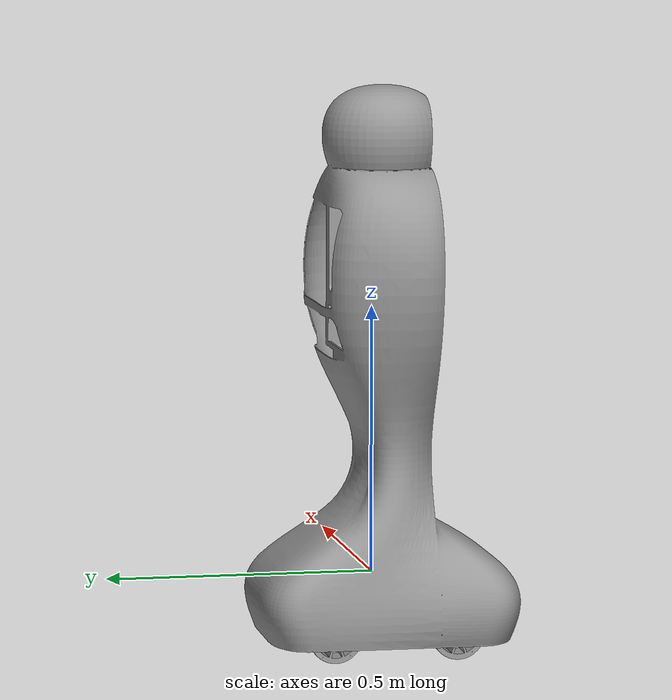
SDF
<?xml version='1.0'?>
<sdf version='1.6'>
  <model name='model'>
    <link name='link_0'>
      <inertial>
        <mass>1</mass>
        <inertia>
          <ixx>0.166667</ixx>
          <ixy>0</ixy>
          <ixz>0</ixz>
          <iyy>0.166667</iyy>
          <iyz>0</iyz>
          <izz>0.166667</izz>
        </inertia>
        <pose frame=''>0 0 0 0 -0 0</pose>
      </inertial>
      <pose frame=''>-3.6e-05 -0.019281 -0.091956 0 -0 0</pose>
      <gravity>1</gravity>
      <self_collide>0</self_collide>
      <kinematic>0</kinematic>
      <enable_wind>0</enable_wind>
      <visual name='visual'>
        <pose frame=''>0 0 0 0 -0 0</pose>
        <geometry>
          <mesh>
            <uri>/home/pratik/review2/src/demo_car/meshes/base_full.stl</uri>
            <scale>1 1 1</scale>
          </mesh>
        </geometry>
        <material>
          <lighting>1</lighting>
          <script>
            <uri>file://media/materials/scripts/gazebo.material</uri>
            <name>Gazebo/Grey</name>
          </script>
          <shader type='vertex'>
            <normal_map>__default__</normal_map>
          </shader>
          <ambient>0.3 0.3 0.3 1</ambient>
          <diffuse>0.7 0.7 0.7 1</diffuse>
          <specular>0.01 0.01 0.01 1</specular>
          <emissive>0 0 0 1</emissive>
        </material>
        <transparency>0</transparency>
        <cast_shadows>1</cast_shadows>
      </visual>
      <collision name='collision'>
        <laser_retro>0</laser_retro>
        <max_contacts>10</max_contacts>
        <pose frame=''>0 0 0 0 -0 0</pose>
        <geometry>
          <mesh>
            <uri>/home/pratik/review2/src/demo_car/meshes/base_full.stl</uri>
            <scale>1 1 1</scale>
          </mesh>
        </geometry>
        <surface>
          <friction>
            <ode>
              <mu>1</mu>
              <mu2>1</mu2>
              <fdir1>0 0 0</fdir1>
              <slip1>0</slip1>
              <slip2>0</slip2>
            </ode>
            <torsional>
              <coefficient>1</coefficient>
              <patch_radius>0</patch_radius>
              <surface_radius>0</surface_radius>
              <use_patch_radius>1</use_patch_radius>
              <ode>
                <slip>0</slip>
              </ode>
            </torsional>
          </friction>
          <bounce>
            <restitution_coefficient>0</restitution_coefficient>
            <threshold>1e+06</threshold>
          </bounce>
          <contact>
            <collide_without_contact>0</collide_without_contact>
            <collide_without_contact_bitmask>1</collide_without_contact_bitmask>
            <collide_bitmask>1</collide_bitmask>
            <ode>
              <soft_cfm>0</soft_cfm>
              <soft_erp>0.2</soft_erp>
              <kp>1e+13</kp>
              <kd>1</kd>
              <max_vel>0.01</max_vel>
              <min_depth>0</min_depth>
            </ode>
            <bullet>
              <split_impulse>1</split_impulse>
              <split_impulse_penetration_threshold>-0.01</split_impulse_penetration_threshold>
              <soft_cfm>0</soft_cfm>
              <soft_erp>0.2</soft_erp>
              <kp>1e+13</kp>
              <kd>1</kd>
            </bullet>
          </contact>
        </surface>
      </collision>
    </link>
    <link name='link_1'>
      <inertial>
        <mass>1</mass>
        <inertia>
          <ixx>0.166667</ixx>
          <ixy>0</ixy>
          <ixz>0</ixz>
          <iyy>0.166667</iyy>
          <iyz>0</iyz>
          <izz>0.166667</izz>
        </inertia>
        <pose frame=''>0 0 0 0 -0 0</pose>
      </inertial>
      <pose frame=''>-3.6e-05 -0.019281 -0.091956 0 -0 0</pose>
      <gravity>1</gravity>
      <self_collide>0</self_collide>
      <kinematic>0</kinematic>
      <enable_wind>0</enable_wind>
      <visual name='visual'>
        <pose frame=''>0 0 0 0 -0 0</pose>
        <geometry>
          <mesh>
            <uri>/home/pratik/review2/src/demo_car/meshes/wheel_fr.stl</uri>
            <scale>1 1 1</scale>
          </mesh>
        </geometry>
        <material>
          <lighting>1</lighting>
          <script>
            <uri>file://media/materials/scripts/gazebo.material</uri>
            <name>Gazebo/Grey</name>
          </script>
          <shader type='vertex'>
            <normal_map>__default__</normal_map>
          </shader>
          <ambient>0.3 0.3 0.3 1</ambient>
          <diffuse>0.7 0.7 0.7 1</diffuse>
          <specular>0.01 0.01 0.01 1</specular>
          <emissive>0 0 0 1</emissive>
        </material>
        <transparency>0</transparency>
        <cast_shadows>1</cast_shadows>
      </visual>
      <collision name='collision'>
        <laser_retro>0</laser_retro>
        <max_contacts>10</max_contacts>
        <pose frame=''>0 0 0 0 -0 0</pose>
        <geometry>
          <mesh>
            <uri>/home/pratik/review2/src/demo_car/meshes/wheel_fr.stl</uri>
            <scale>1 1 1</scale>
          </mesh>
        </geometry>
        <surface>
          <friction>
            <ode>
              <mu>1</mu>
              <mu2>1</mu2>
              <fdir1>0 0 0</fdir1>
              <slip1>0</slip1>
              <slip2>0</slip2>
            </ode>
            <torsional>
              <coefficient>1</coefficient>
              <patch_radius>0</patch_radius>
              <surface_radius>0</surface_radius>
              <use_patch_radius>1</use_patch_radius>
              <ode>
                <slip>0</slip>
              </ode>
            </torsional>
          </friction>
          <bounce>
            <restitution_coefficient>0</restitution_coefficient>
            <threshold>1e+06</threshold>
          </bounce>
          <contact>
            <collide_without_contact>0</collide_without_contact>
            <collide_without_contact_bitmask>1</collide_without_contact_bitmask>
            <collide_bitmask>1</collide_bitmask>
            <ode>
              <soft_cfm>0</soft_cfm>
              <soft_erp>0.2</soft_erp>
              <kp>1e+13</kp>
              <kd>1</kd>
              <max_vel>0.01</max_vel>
              <min_depth>0</min_depth>
            </ode>
            <bullet>
              <split_impulse>1</split_impulse>
              <split_impulse_penetration_threshold>-0.01</split_impulse_penetration_threshold>
              <soft_cfm>0</soft_cfm>
              <soft_erp>0.2</soft_erp>
              <kp>1e+13</kp>
              <kd>1</kd>
            </bullet>
          </contact>
        </surface>
      </collision>
    </link>
    <link name='link_2'>
      <inertial>
        <mass>1</mass>
        <inertia>
          <ixx>0.166667</ixx>
          <ixy>0</ixy>
          <ixz>0</ixz>
          <iyy>0.166667</iyy>
          <iyz>0</iyz>
          <izz>0.166667</izz>
        </inertia>
        <pose frame=''>0 0 0 0 -0 0</pose>
      </inertial>
      <pose frame=''>-3.6e-05 -0.019281 -0.091956 3.14159 0.001593 3.14159</pose>
      <gravity>1</gravity>
      <self_collide>0</self_collide>
      <kinematic>0</kinematic>
      <enable_wind>0</enable_wind>
      <visual name='visual'>
        <pose frame=''>0 0 0 0 -0 0</pose>
        <geometry>
          <mesh>
            <uri>/home/pratik/review2/src/demo_car/meshes/wheel_fr.stl</uri>
            <scale>1 1 1</scale>
          </mesh>
        </geometry>
        <material>
          <lighting>1</lighting>
          <script>
            <uri>file://media/materials/scripts/gazebo.material</uri>
            <name>Gazebo/Grey</name>
          </script>
          <shader type='vertex'>
            <normal_map>__default__</normal_map>
          </shader>
          <ambient>0.3 0.3 0.3 1</ambient>
          <diffuse>0.7 0.7 0.7 1</diffuse>
          <specular>0.01 0.01 0.01 1</specular>
          <emissive>0 0 0 1</emissive>
        </material>
        <transparency>0</transparency>
        <cast_shadows>1</cast_shadows>
      </visual>
      <collision name='collision'>
        <laser_retro>0</laser_retro>
        <max_contacts>10</max_contacts>
        <pose frame=''>0 0 0 0 -0 0</pose>
        <geometry>
          <mesh>
            <uri>/home/pratik/review2/src/demo_car/meshes/wheel_fr.stl</uri>
            <scale>1 1 1</scale>
          </mesh>
        </geometry>
        <surface>
          <friction>
            <ode>
              <mu>1</mu>
              <mu2>1</mu2>
              <fdir1>0 0 0</fdir1>
              <slip1>0</slip1>
              <slip2>0</slip2>
            </ode>
            <torsional>
              <coefficient>1</coefficient>
              <patch_radius>0</patch_radius>
              <surface_radius>0</surface_radius>
              <use_patch_radius>1</use_patch_radius>
              <ode>
                <slip>0</slip>
              </ode>
            </torsional>
          </friction>
          <bounce>
            <restitution_coefficient>0</restitution_coefficient>
            <threshold>1e+06</threshold>
          </bounce>
          <contact>
            <collide_without_contact>0</collide_without_contact>
            <collide_without_contact_bitmask>1</collide_without_contact_bitmask>
            <collide_bitmask>1</collide_bitmask>
            <ode>
              <soft_cfm>0</soft_cfm>
              <soft_erp>0.2</soft_erp>
              <kp>1e+13</kp>
              <kd>1</kd>
              <max_vel>0.01</max_vel>
              <min_depth>0</min_depth>
            </ode>
            <bullet>
              <split_impulse>1</split_impulse>
              <split_impulse_penetration_threshold>-0.01</split_impulse_penetration_threshold>
              <soft_cfm>0</soft_cfm>
              <soft_erp>0.2</soft_erp>
              <kp>1e+13</kp>
              <kd>1</kd>
            </bullet>
          </contact>
        </surface>
      </collision>
    </link>
    <link name='link_3'>
      <inertial>
        <mass>1</mass>
        <inertia>
          <ixx>0.166667</ixx>
          <ixy>0</ixy>
          <ixz>0</ixz>
          <iyy>0.166667</iyy>
          <iyz>0</iyz>
          <izz>0.166667</izz>
        </inertia>
        <pose frame=''>0 0 0 0 -0 0</pose>
      </inertial>
      <pose frame=''>-3.6e-05 -0.019281 -0.091956 3.14 -0 0</pose>
      <gravity>1</gravity>
      <self_collide>0</self_collide>
      <kinematic>0</kinematic>
      <enable_wind>0</enable_wind>
      <visual name='visual'>
        <pose frame=''>0 0 0 0 -0 0</pose>
        <geometry>
          <mesh>
            <uri>/home/pratik/review2/src/demo_car/meshes/wheel_fr.stl</uri>
            <scale>1 1 1</scale>
          </mesh>
        </geometry>
        <material>
          <lighting>1</lighting>
          <script>
            <uri>file://media/materials/scripts/gazebo.material</uri>
            <name>Gazebo/Grey</name>
          </script>
          <shader type='vertex'>
            <normal_map>__default__</normal_map>
          </shader>
          <ambient>0.3 0.3 0.3 1</ambient>
          <diffuse>0.7 0.7 0.7 1</diffuse>
          <specular>0.01 0.01 0.01 1</specular>
          <emissive>0 0 0 1</emissive>
        </material>
        <transparency>0</transparency>
        <cast_shadows>1</cast_shadows>
      </visual>
      <collision name='collision'>
        <laser_retro>0</laser_retro>
        <max_contacts>10</max_contacts>
        <pose frame=''>0 0 0 0 -0 0</pose>
        <geometry>
          <mesh>
            <uri>/home/pratik/review2/src/demo_car/meshes/wheel_fr.stl</uri>
            <scale>1 1 1</scale>
          </mesh>
        </geometry>
        <surface>
          <friction>
            <ode>
              <mu>1</mu>
              <mu2>1</mu2>
              <fdir1>0 0 0</fdir1>
              <slip1>0</slip1>
              <slip2>0</slip2>
            </ode>
            <torsional>
              <coefficient>1</coefficient>
              <patch_radius>0</patch_radius>
              <surface_radius>0</surface_radius>
              <use_patch_radius>1</use_patch_radius>
              <ode>
                <slip>0</slip>
              </ode>
            </torsional>
          </friction>
          <bounce>
            <restitution_coefficient>0</restitution_coefficient>
            <threshold>1e+06</threshold>
          </bounce>
          <contact>
            <collide_without_contact>0</collide_without_contact>
            <collide_without_contact_bitmask>1</collide_without_contact_bitmask>
            <collide_bitmask>1</collide_bitmask>
            <ode>
              <soft_cfm>0</soft_cfm>
              <soft_erp>0.2</soft_erp>
              <kp>1e+13</kp>
              <kd>1</kd>
              <max_vel>0.01</max_vel>
              <min_depth>0</min_depth>
            </ode>
            <bullet>
              <split_impulse>1</split_impulse>
              <split_impulse_penetration_threshold>-0.01</split_impulse_penetration_threshold>
              <soft_cfm>0</soft_cfm>
              <soft_erp>0.2</soft_erp>
              <kp>1e+13</kp>
              <kd>1</kd>
            </bullet>
          </contact>
        </surface>
      </collision>
    </link>
    <link name='link_4'>
      <inertial>
        <mass>1</mass>
        <inertia>
          <ixx>0.166667</ixx>
          <ixy>0</ixy>
          <ixz>0</ixz>
          <iyy>0.166667</iyy>
          <iyz>0</iyz>
          <izz>0.166667</izz>
        </inertia>
        <pose frame=''>0 0 0 0 -0 0</pose>
      </inertial>
      <pose frame=''>-3.6e-05 -0.019281 -0.091956 -0.001593 0.001593 3.14159</pose>
      <gravity>1</gravity>
      <self_collide>0</self_collide>
      <kinematic>0</kinematic>
      <enable_wind>0</enable_wind>
      <visual name='visual'>
        <pose frame=''>0 0 0 0 -0 0</pose>
        <geometry>
          <mesh>
            <uri>/home/pratik/review2/src/demo_car/meshes/wheel_fr.stl</uri>
            <scale>1 1 1</scale>
          </mesh>
        </geometry>
        <material>
          <lighting>1</lighting>
          <script>
            <uri>file://media/materials/scripts/gazebo.material</uri>
            <name>Gazebo/Grey</name>
          </script>
          <shader type='vertex'>
            <normal_map>__default__</normal_map>
          </shader>
          <ambient>0.3 0.3 0.3 1</ambient>
          <diffuse>0.7 0.7 0.7 1</diffuse>
          <specular>0.01 0.01 0.01 1</specular>
          <emissive>0 0 0 1</emissive>
        </material>
        <transparency>0</transparency>
        <cast_shadows>1</cast_shadows>
      </visual>
      <collision name='collision'>
        <laser_retro>0</laser_retro>
        <max_contacts>10</max_contacts>
        <pose frame=''>0 0 0 0 -0 0</pose>
        <geometry>
          <mesh>
            <uri>/home/pratik/review2/src/demo_car/meshes/wheel_fr.stl</uri>
            <scale>1 1 1</scale>
          </mesh>
        </geometry>
        <surface>
          <friction>
            <ode>
              <mu>1</mu>
              <mu2>1</mu2>
              <fdir1>0 0 0</fdir1>
              <slip1>0</slip1>
              <slip2>0</slip2>
            </ode>
            <torsional>
              <coefficient>1</coefficient>
              <patch_radius>0</patch_radius>
              <surface_radius>0</surface_radius>
              <use_patch_radius>1</use_patch_radius>
              <ode>
                <slip>0</slip>
              </ode>
            </torsional>
          </friction>
          <bounce>
            <restitution_coefficient>0</restitution_coefficient>
            <threshold>1e+06</threshold>
          </bounce>
          <contact>
            <collide_without_contact>0</collide_without_contact>
            <collide_without_contact_bitmask>1</collide_without_contact_bitmask>
            <collide_bitmask>1</collide_bitmask>
            <ode>
              <soft_cfm>0</soft_cfm>
              <soft_erp>0.2</soft_erp>
              <kp>1e+13</kp>
              <kd>1</kd>
              <max_vel>0.01</max_vel>
              <min_depth>0</min_depth>
            </ode>
            <bullet>
              <split_impulse>1</split_impulse>
              <split_impulse_penetration_threshold>-0.01</split_impulse_penetration_threshold>
              <soft_cfm>0</soft_cfm>
              <soft_erp>0.2</soft_erp>
              <kp>1e+13</kp>
              <kd>1</kd>
            </bullet>
          </contact>
        </surface>
      </collision>
    </link>
    <joint name='link_0_JOINT_0' type='revolute'>
      <parent>link_0</parent>
      <child>link_1</child>
      <pose frame=''>0 0.115 0 0 -0 0</pose>
      <axis>
        <xyz>1 0 0</xyz>
        <use_parent_model_frame>0</use_parent_model_frame>
        <limit>
          <lower>-1.79769e+308</lower>
          <upper>1.79769e+308</upper>
          <effort>-1</effort>
          <velocity>-1</velocity>
        </limit>
        <dynamics>
          <spring_reference>0</spring_reference>
          <spring_stiffness>0</spring_stiffness>
          <damping>0</damping>
        </dynamics>
      </axis>
      <physics>
        <ode>
          <limit>
            <cfm>0</cfm>
            <erp>0.2</erp>
          </limit>
          <suspension>
            <cfm>0</cfm>
            <erp>0.2</erp>
          </suspension>
        </ode>
      </physics>
    </joint>
    <joint name='link_0_JOINT_1' type='revolute'>
      <parent>link_0</parent>
      <child>link_2</child>
      <pose frame=''>0 0.115 0 0 -0 0</pose>
      <axis>
        <xyz>1 0 0</xyz>
        <use_parent_model_frame>0</use_parent_model_frame>
        <limit>
          <lower>-1.79769e+308</lower>
          <upper>1.79769e+308</upper>
          <effort>-1</effort>
          <velocity>-1</velocity>
        </limit>
        <dynamics>
          <spring_reference>0</spring_reference>
          <spring_stiffness>0</spring_stiffness>
          <damping>0</damping>
        </dynamics>
      </axis>
      <physics>
        <ode>
          <limit>
            <cfm>0</cfm>
            <erp>0.2</erp>
          </limit>
          <suspension>
            <cfm>0</cfm>
            <erp>0.2</erp>
          </suspension>
        </ode>
      </physics>
    </joint>
    <joint name='link_0_JOINT_2' type='revolute'>
      <parent>link_0</parent>
      <child>link_3</child>
      <pose frame=''>0 0.115 0 0 -0 0</pose>
      <axis>
        <xyz>1 0 0</xyz>
        <use_parent_model_frame>0</use_parent_model_frame>
        <limit>
          <lower>-1.79769e+308</lower>
          <upper>1.79769e+308</upper>
          <effort>-1</effort>
          <velocity>-1</velocity>
        </limit>
        <dynamics>
          <spring_reference>0</spring_reference>
          <spring_stiffness>0</spring_stiffness>
          <damping>0</damping>
        </dynamics>
      </axis>
      <physics>
        <ode>
          <limit>
            <cfm>0</cfm>
            <erp>0.2</erp>
          </limit>
          <suspension>
            <cfm>0</cfm>
            <erp>0.2</erp>
          </suspension>
        </ode>
      </physics>
    </joint>
    <joint name='link_0_JOINT_3' type='revolute'>
      <parent>link_0</parent>
      <child>link_4</child>
      <pose frame=''>0 0.115 0 0 -0 0</pose>
      <axis>
        <xyz>1 0 0</xyz>
        <use_parent_model_frame>0</use_parent_model_frame>
        <limit>
          <lower>-1.79769e+308</lower>
          <upper>1.79769e+308</upper>
          <effort>-1</effort>
          <velocity>-1</velocity>
        </limit>
        <dynamics>
          <spring_reference>0</spring_reference>
          <spring_stiffness>0</spring_stiffness>
          <damping>0</damping>
        </dynamics>
      </axis>
      <physics>
        <ode>
          <limit>
            <cfm>0</cfm>
            <erp>0.2</erp>
          </limit>
          <suspension>
            <cfm>0</cfm>
            <erp>0.2</erp>
          </suspension>
        </ode>
      </physics>
    </joint>
  </model>

  <plugin name="skid_steer_drive_controller" filename="libgazebo_ros_skid_steer_drive.so">
    <updateRate>100.0</updateRate>
    <robotNamespace>/</robotNamespace>
    <leftFrontJoint>model__link_0_JOINT_1</leftFrontJoint>
    <rightFrontJoint>model__link_0_JOINT_0</rightFrontJoint>
    <leftRearJoint>model__link_0_JOINT_3</leftRearJoint>
    <rightRearJoint>model__link_0_JOINT_2</rightRearJoint>
    <wheelSeparation>0.212</wheelSeparation>
    <wheelDiameter>0.01</wheelDiameter>
    <robotBaseFrame>model__link_0</robotBaseFrame>
    <torque>0.5</torque>
    <topicName>cmd_vel</topicName>
    <broadcastTF>false</broadcastTF>
  </plugin>

</sdf>
